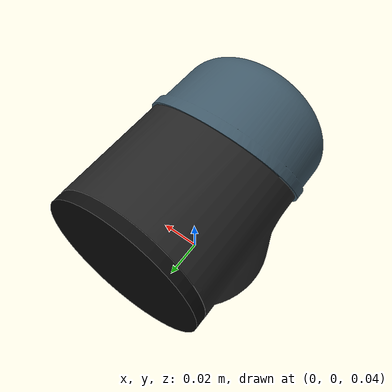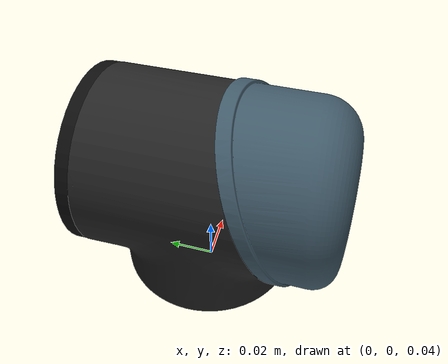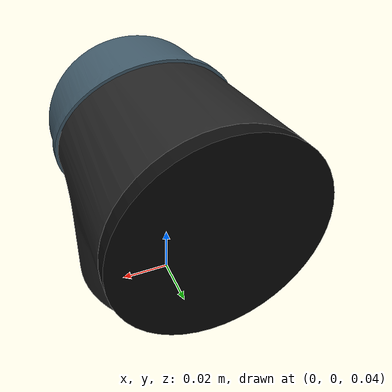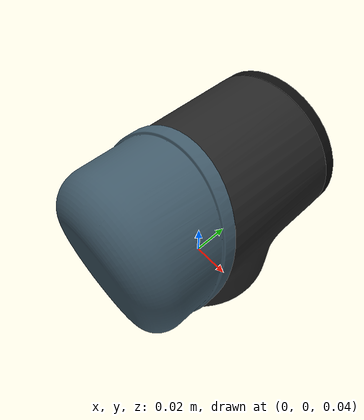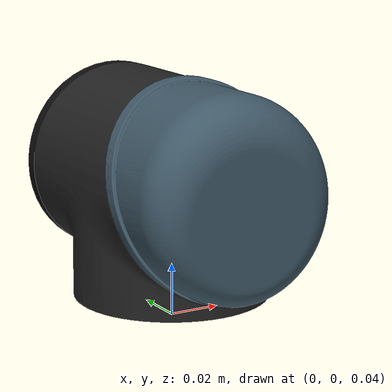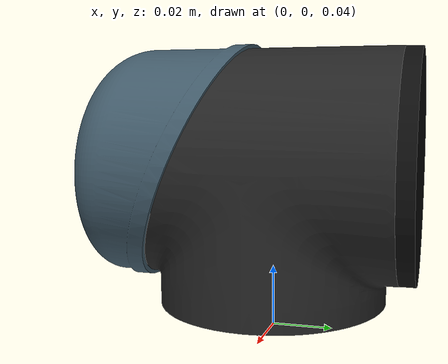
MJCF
<mujoco model="wrist2">
  <default>
    <default class="visual">
      <geom group="2" type="mesh" contype="0" conaffinity="0"/>
    </default>
    <default class="collision">
      <geom group="3" type="mesh"/>
    </default>
  </default>
  <asset>
    <material name="material_wrist2_0" specular="0.20000000000000004" shininess="1.0" rgba="0.05098039 0.05098039 0.05098039 1.0"/>
    <material name="material_wrist2_1" specular="0.20000000000000004" shininess="1.0" rgba="0.14117647 0.14117647 0.14117647 1.0"/>
    <material name="material_wrist2_2" specular="0.20000000000000004" shininess="1.0" rgba="0.25098039 0.34901961 0.40784314 1.0"/>
    <mesh file="wrist2_0.obj"/>
    <mesh file="wrist2_1.obj"/>
    <mesh file="wrist2_2.obj"/>
  </asset>
  <worldbody>
    <body name="wrist2">
      <geom mesh="wrist2_0" material="material_wrist2_2" class="visual"/>
      <geom mesh="wrist2_1" material="material_wrist2_1" class="visual"/>
      <geom mesh="wrist2_2" material="material_wrist2_0" class="visual"/>
      <geom mesh="wrist2_0" class="collision"/>
      <geom mesh="wrist2_1" class="collision"/>
      <geom mesh="wrist2_2" class="collision"/>
    </body>
  </worldbody>
</mujoco>
